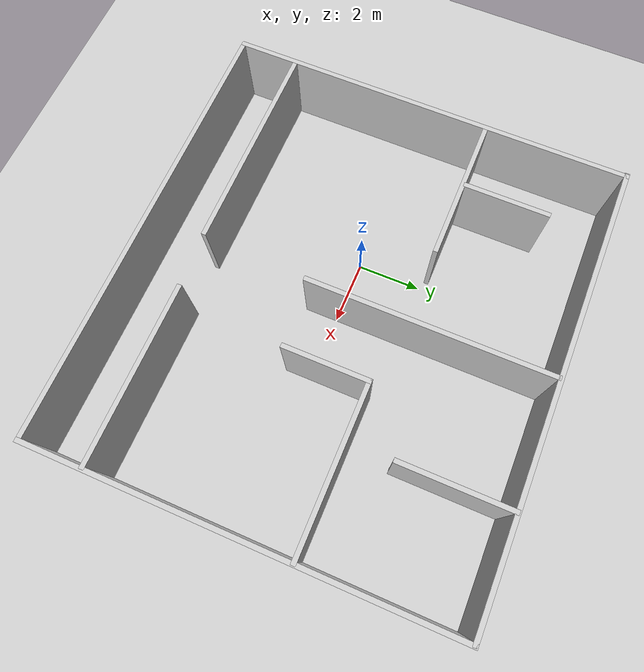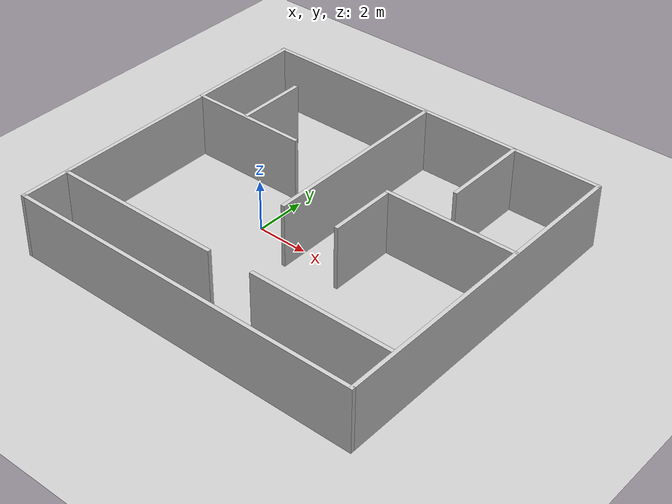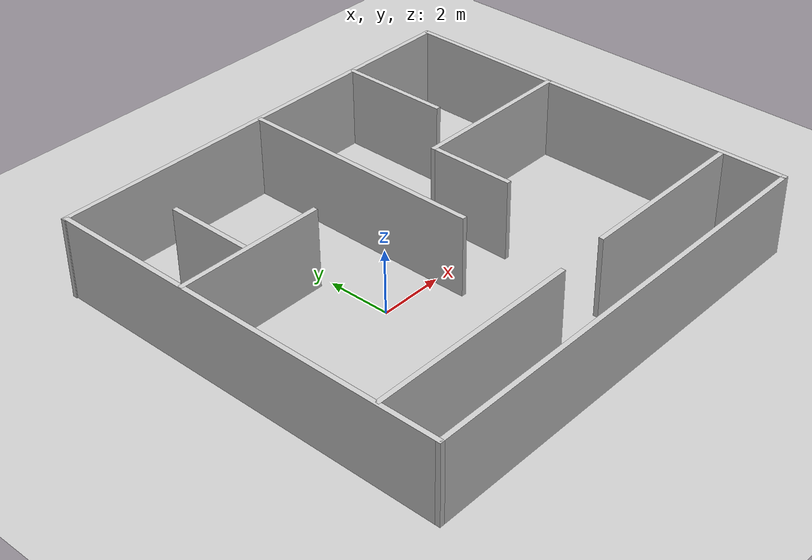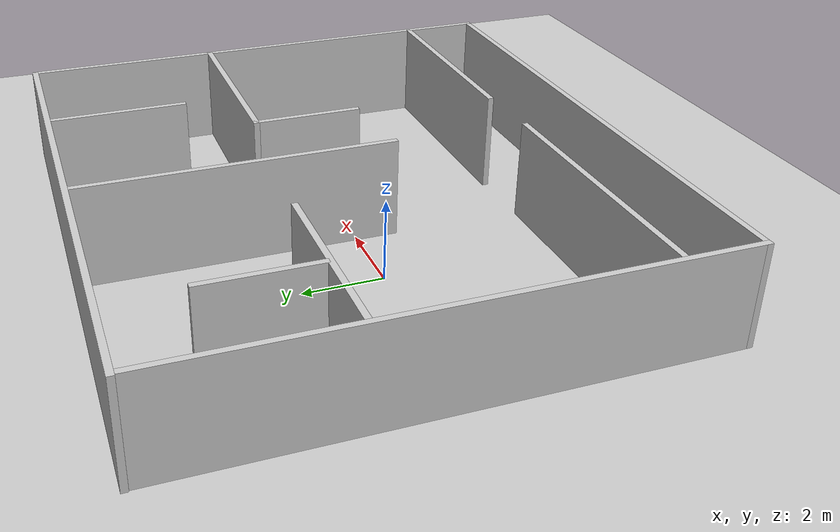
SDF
<sdf version="1.9">
 <world name="default">
  <gravity>0 0 -9.8</gravity>
  <magnetic_field>6e-06 2.3e-05 -4.2e-05</magnetic_field>
  <atmosphere type="adiabatic"/>
  <physics name="1ms" type="ignored">
   <max_step_size>0.001</max_step_size>
   <real_time_factor>1</real_time_factor>
   <real_time_update_rate>1000</real_time_update_rate>
  </physics>
  <scene><ambient>0.4 0.4 0.4 1</ambient><background>0.7 0.7 0.7 1</background><shadows>true</shadows></scene>
  <audio><device>default</device></audio>
  <spherical_coordinates>
   <surface_model>EARTH_WGS84</surface_model>
   <latitude_deg>0</latitude_deg>
   <longitude_deg>0</longitude_deg>
   <elevation>0</elevation>
   <heading_deg>0</heading_deg>
  </spherical_coordinates>
  <model name="ground_plane">
   <static>true</static>
   <link name="link">
    <collision name="collision">
     <geometry><plane><normal>0 0 1</normal><size>100 100</size></plane></geometry>
     <surface>
      <contact><collide_bitmask>65535</collide_bitmask></contact>
      <friction><ode><mu>100</mu><mu2>50</mu2></ode></friction>
     </surface>
    </collision>
    <visual name="visual">
     <cast_shadows>false</cast_shadows>
     <geometry><plane><normal>0 0 1</normal><size>100 100</size></plane></geometry>
     <material>
      <ambient>0.2 0.2 0.2 1</ambient>
      <diffuse>0.8 0.8 0.8 1</diffuse>
      <specular>0.5 0.5 0.5 1</specular>
     </material>
    </visual>
    <inertial>
     <mass>1</mass>
     <inertia><ixx>1</ixx><ixy>0</ixy><ixz>0</ixz><iyy>1</iyy><iyz>0</iyz><izz>1</izz></inertia>
    </inertial>
   </link>
  </model>
  <model name="maze2">
   <pose>2.13279 0.260865 0 0 -0 0</pose>
   <link name="Wall_11">
    <collision name="Wall_11_Collision">
     <geometry><box><size>5.67497 0.15 2.5</size></box></geometry>
     <pose>0 0 1.25 0 -0 0</pose>
    </collision>
    <visual name="Wall_11_Visual">
     <pose>0 0 1.25 0 -0 0</pose>
     <geometry><box><size>5.67497 0.15 2.5</size></box></geometry>
     <material>
      <ambient>0.2 0.2 0.2 1</ambient>
      <diffuse>0.8 0.8 0.8 1</diffuse>
      <specular>0.5 0.5 0.5 1</specular>
     </material>
     <meta><layer>0</layer></meta>
    </visual>
    <pose>4.24317 -4.50396 0 0 0 -0.000637</pose>
    <inertial>
     <mass>1</mass>
     <inertia><ixx>1</ixx><ixy>0</ixy><ixz>0</ixz><iyy>1</iyy><iyz>0</iyz><izz>1</izz></inertia>
    </inertial>
   </link>
   <link name="Wall_13">
    <collision name="Wall_13_Collision">
     <geometry><box><size>7.75 0.15 2.5</size></box></geometry>
     <pose>0 0 1.25 0 -0 0</pose>
    </collision>
    <visual name="Wall_13_Visual">
     <pose>0 0 1.25 0 -0 0</pose>
     <geometry><box><size>7.75 0.15 2.5</size></box></geometry>
     <material>
      <ambient>0.2 0.2 0.2 1</ambient>
      <diffuse>0.8 0.8 0.8 1</diffuse>
      <specular>0.5 0.5 0.5 1</specular>
     </material>
     <meta><layer>0</layer></meta>
    </visual>
    <pose>-0.170756 2.58239 0 0 0 -1.5708</pose>
    <inertial>
     <mass>1</mass>
     <inertia><ixx>1</ixx><ixy>0</ixy><ixz>0</ixz><iyy>1</iyy><iyz>0</iyz><izz>1</izz></inertia>
    </inertial>
   </link>
   <link name="Wall_15">
    <collision name="Wall_15_Collision">
     <geometry><box><size>4.67308 0.15 2.5</size></box></geometry>
     <pose>0 0 1.25 0 -0 0</pose>
    </collision>
    <visual name="Wall_15_Visual">
     <pose>0 0 1.25 0 -0 0</pose>
     <geometry><box><size>4.67308 0.15 2.5</size></box></geometry>
     <material>
      <ambient>0.2 0.2 0.2 1</ambient>
      <diffuse>0.8 0.8 0.8 1</diffuse>
      <specular>0.5 0.5 0.5 1</specular>
     </material>
     <meta><layer>0</layer></meta>
    </visual>
    <pose>-4.7502 1.93284 0 0 0 -0.000249</pose>
    <inertial>
     <mass>1</mass>
     <inertia><ixx>1</ixx><ixy>0</ixy><ixz>0</ixz><iyy>1</iyy><iyz>0</iyz><izz>1</izz></inertia>
    </inertial>
   </link>
   <link name="Wall_18">
    <collision name="Wall_18_Collision">
     <geometry><box><size>5.25 0.15 2.5</size></box></geometry>
     <pose>0 0 1.25 0 -0 0</pose>
    </collision>
    <visual name="Wall_18_Visual">
     <pose>0 0 1.25 0 -0 0</pose>
     <geometry><box><size>5.25 0.15 2.5</size></box></geometry>
     <material>
      <ambient>0.2 0.2 0.2 1</ambient>
      <diffuse>0.8 0.8 0.8 1</diffuse>
      <specular>0.5 0.5 0.5 1</specular>
     </material>
     <meta><layer>0</layer></meta>
    </visual>
    <pose>4.48034 1.60864 0 0 -0 3.14159</pose>
    <inertial>
     <mass>1</mass>
     <inertia><ixx>1</ixx><ixy>0</ixy><ixz>0</ixz><iyy>1</iyy><iyz>0</iyz><izz>1</izz></inertia>
    </inertial>
   </link>
   <link name="Wall_19">
    <collision name="Wall_19_Collision">
     <geometry><box><size>2.75 0.15 2.5</size></box></geometry>
     <pose>0 0 1.25 0 -0 0</pose>
    </collision>
    <visual name="Wall_19_Visual">
     <pose>0 0 1.25 0 -0 0</pose>
     <geometry><box><size>2.75 0.15 2.5</size></box></geometry>
     <material>
      <ambient>0.2 0.2 0.2 1</ambient>
      <diffuse>0.8 0.8 0.8 1</diffuse>
      <specular>0.5 0.5 0.5 1</specular>
     </material>
     <meta><layer>0</layer></meta>
    </visual>
    <pose>1.93034 0.308637 0 0 0 -1.5708</pose>
    <inertial>
     <mass>1</mass>
     <inertia><ixx>1</ixx><ixy>0</ixy><ixz>0</ixz><iyy>1</iyy><iyz>0</iyz><izz>1</izz></inertia>
    </inertial>
   </link>
   <link name="Wall_2">
    <collision name="Wall_2_Collision">
     <geometry><box><size>13.0615 0.15 2.5</size></box></geometry>
     <pose>0 0 1.25 0 -0 0</pose>
    </collision>
    <visual name="Wall_2_Visual">
     <pose>0 0 1.25 0 -0 0</pose>
     <geometry><box><size>13.0615 0.15 2.5</size></box></geometry>
     <material>
      <ambient>0.2 0.2 0.2 1</ambient>
      <diffuse>0.8 0.8 0.8 1</diffuse>
      <specular>0.5 0.5 0.5 1</specular>
     </material>
     <meta><layer>0</layer></meta>
    </visual>
    <pose>-7.03462 -0 0 0 -0 1.5708</pose>
    <inertial>
     <mass>1</mass>
     <inertia><ixx>1</ixx><ixy>0</ixy><ixz>0</ixz><iyy>1</iyy><iyz>0</iyz><izz>1</izz></inertia>
    </inertial>
   </link>
   <link name="Wall_21">
    <collision name="Wall_21_Collision">
     <geometry><box><size>3.5 0.15 2.5</size></box></geometry>
     <pose>0 0 1.25 0 -0 0</pose>
    </collision>
    <visual name="Wall_21_Visual">
     <pose>0 0 1.25 0 -0 0</pose>
     <geometry><box><size>3.5 0.15 2.5</size></box></geometry>
     <material>
      <ambient>0.2 0.2 0.2 1</ambient>
      <diffuse>0.8 0.8 0.8 1</diffuse>
      <specular>0.5 0.5 0.5 1</specular>
     </material>
     <meta><layer>0</layer></meta>
    </visual>
    <pose>3.67252 4.74785 0 0 0 -1.5708</pose>
    <inertial>
     <mass>1</mass>
     <inertia><ixx>1</ixx><ixy>0</ixy><ixz>0</ixz><iyy>1</iyy><iyz>0</iyz><izz>1</izz></inertia>
    </inertial>
   </link>
   <link name="Wall_23">
    <collision name="Wall_23_Collision">
     <geometry><box><size>2.75 0.15 2.5</size></box></geometry>
     <pose>0 0 1.25 0 -0 0</pose>
    </collision>
    <visual name="Wall_23_Visual">
     <pose>0 0 1.25 0 -0 0</pose>
     <geometry><box><size>2.75 0.15 2.5</size></box></geometry>
     <material>
      <ambient>0.2 0.2 0.2 1</ambient>
      <diffuse>0.8 0.8 0.8 1</diffuse>
      <specular>0.5 0.5 0.5 1</specular>
     </material>
     <meta><layer>0</layer></meta>
    </visual>
    <pose>-4.8614 3.32959 0 0 -0 1.5708</pose>
    <inertial>
     <mass>1</mass>
     <inertia><ixx>1</ixx><ixy>0</ixy><ixz>0</ixz><iyy>1</iyy><iyz>0</iyz><izz>1</izz></inertia>
    </inertial>
   </link>
   <link name="Wall_3">
    <collision name="Wall_3_Collision">
     <geometry><box><size>14.25 0.15 2.5</size></box></geometry>
     <pose>0 0 1.25 0 -0 0</pose>
    </collision>
    <visual name="Wall_3_Visual">
     <pose>0 0 1.25 0 -0 0</pose>
     <geometry><box><size>14.25 0.15 2.5</size></box></geometry>
     <material>
      <ambient>0.2 0.2 0.2 1</ambient>
      <diffuse>0.8 0.8 0.8 1</diffuse>
      <specular>0.5 0.5 0.5 1</specular>
     </material>
     <meta><layer>0</layer></meta>
    </visual>
    <pose>-0.015383 6.45576 0 0 -0 0</pose>
    <inertial>
     <mass>1</mass>
     <inertia><ixx>1</ixx><ixy>0</ixy><ixz>0</ixz><iyy>1</iyy><iyz>0</iyz><izz>1</izz></inertia>
    </inertial>
   </link>
   <link name="Wall_4">
    <collision name="Wall_4_Collision">
     <geometry><box><size>13.0615 0.15 2.5</size></box></geometry>
     <pose>0 0 1.25 0 -0 0</pose>
    </collision>
    <visual name="Wall_4_Visual">
     <pose>0 0 1.25 0 -0 0</pose>
     <geometry><box><size>13.0615 0.15 2.5</size></box></geometry>
     <material>
      <ambient>0.2 0.2 0.2 1</ambient>
      <diffuse>0.8 0.8 0.8 1</diffuse>
      <specular>0.5 0.5 0.5 1</specular>
     </material>
     <meta><layer>0</layer></meta>
    </visual>
    <pose>7.06538 0 0 0 0 -1.5708</pose>
    <inertial>
     <mass>1</mass>
     <inertia><ixx>1</ixx><ixy>0</ixy><ixz>0</ixz><iyy>1</iyy><iyz>0</iyz><izz>1</izz></inertia>
    </inertial>
   </link>
   <link name="Wall_5">
    <collision name="Wall_5_Collision">
     <geometry><box><size>14.25 0.15 2.5</size></box></geometry>
     <pose>0 0 1.25 0 -0 0</pose>
    </collision>
    <visual name="Wall_5_Visual">
     <pose>0 0 1.25 0 -0 0</pose>
     <geometry><box><size>14.25 0.15 2.5</size></box></geometry>
     <material>
      <ambient>0.2 0.2 0.2 1</ambient>
      <diffuse>0.8 0.8 0.8 1</diffuse>
      <specular>0.5 0.5 0.5 1</specular>
     </material>
     <meta><layer>0</layer></meta>
    </visual>
    <pose>0.015382 -6.45576 0 0 -0 3.14159</pose>
    <inertial>
     <mass>1</mass>
     <inertia><ixx>1</ixx><ixy>0</ixy><ixz>0</ixz><iyy>1</iyy><iyz>0</iyz><izz>1</izz></inertia>
    </inertial>
   </link>
   <link name="Wall_7">
    <collision name="Wall_7_Collision">
     <geometry><box><size>6.75 0.15 2.5</size></box></geometry>
     <pose>0 0 1.25 0 -0 0</pose>
    </collision>
    <visual name="Wall_7_Visual">
     <pose>0 0 1.25 0 -0 0</pose>
     <geometry><box><size>6.75 0.15 2.5</size></box></geometry>
     <material>
      <ambient>0.2 0.2 0.2 1</ambient>
      <diffuse>0.8 0.8 0.8 1</diffuse>
      <specular>0.5 0.5 0.5 1</specular>
     </material>
     <meta><layer>0</layer></meta>
    </visual>
    <pose>-3.66426 -4.59129 0 0 -0 0</pose>
    <inertial>
     <mass>1</mass>
     <inertia><ixx>1</ixx><ixy>0</ixy><ixz>0</ixz><iyy>1</iyy><iyz>0</iyz><izz>1</izz></inertia>
    </inertial>
   </link>
   <static>true</static>
  </model>
  <light name="sun" type="directional">
   <pose>0 0 10 0 -0 0</pose>
   <intensity>1</intensity>
   <direction>-0.5 0.1 -0.9</direction>
   <diffuse>0.8 0.8 0.8 1</diffuse>
   <specular>0.2 0.2 0.2 1</specular>
   <attenuation>
    <range>1000</range>
    <linear>0.01</linear>
    <constant>0.90000000000000002</constant>
    <quadratic>0.001</quadratic>
   </attenuation>
   <spot><inner_angle>0</inner_angle><outer_angle>0</outer_angle><falloff>0</falloff></spot>
  </light>
 </world>
</sdf>
